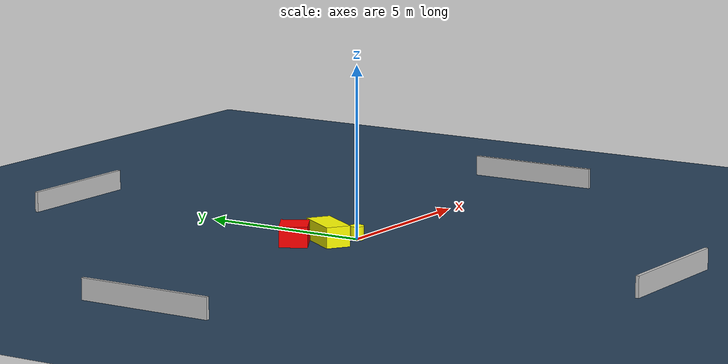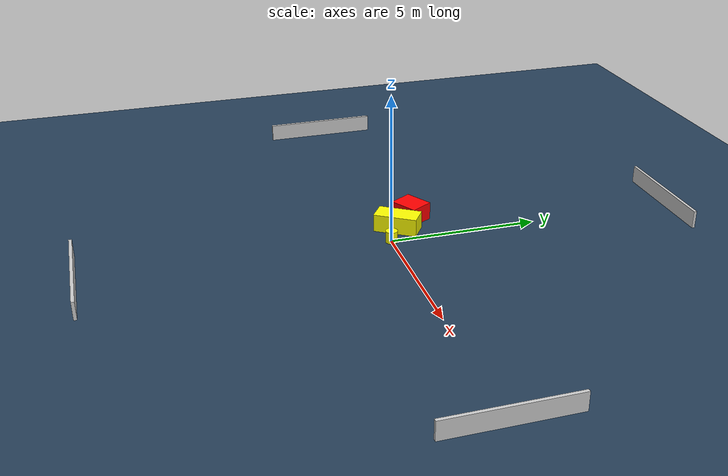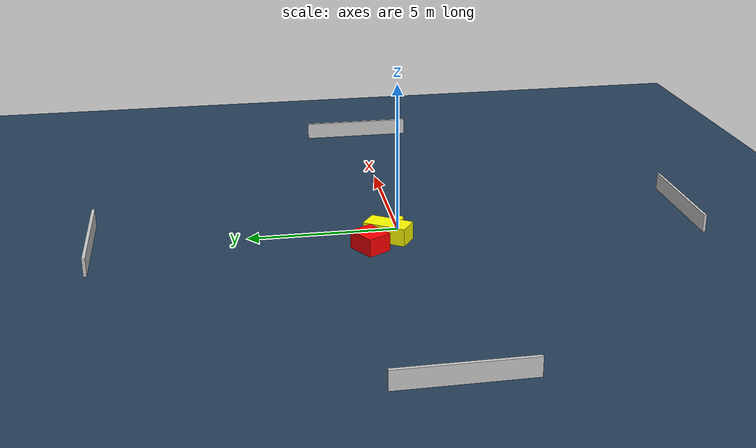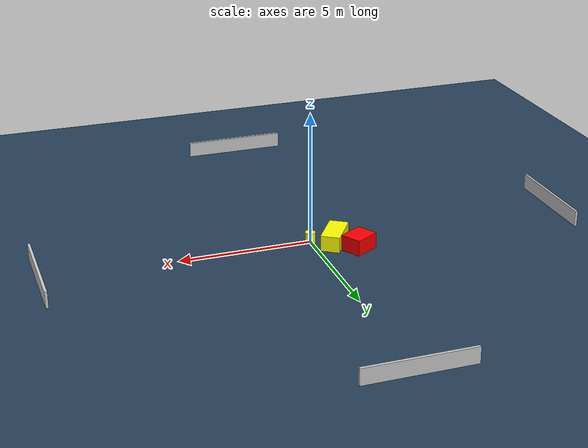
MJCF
<?xml version="1.0" ?>
<mujoco model="generated_environment">
  <option timestep="0.01" integrator="RK4" cone="elliptic"/>
  <default>
    <geom density="1"/>
  </default>
  <asset>
    <texture builtin="gradient" height="3072" name="skybox" rgb1="0.3 0.5 0.7" rgb2="0 0 0" type="skybox" width="512"/>
    <texture builtin="checker" height="300" name="groundplane" rgb1="0.2 0.3 0.4" rgb2="0.1 0.2 0.3" type="2d" width="300"/>
    <material name="groundplane" reflectance="0.2" texrepeat="5 5" texture="groundplane"/>
  </asset>
  <worldbody>
    <light dir="0 0 -1" directional="true" pos="0 0 1.5"/>
    <geom condim="3" friction="0.5 0.005 0.001" material="groundplane" name="floor" pos="0 0 0" size="0 0 0.05" type="plane"/>
    <body name="walls">
      <geom name="wall_1" condim="4" pos="-10.0 0.0 0.3" rgba="0.800000011920929 0.800000011920929 0.800000011920929 1.0" size="0.05 2.0 0.3" type="box"/>
      <geom name="wall_2" condim="4" pos="10.0 0.0 0.3" rgba="0.800000011920929 0.800000011920929 0.800000011920929 1.0" size="0.05 2.0 0.3" type="box"/>
      <geom name="wall_3" condim="4" pos="0.0 -10.0 0.3" rgba="0.800000011920929 0.800000011920929 0.800000011920929 1.0" size="2.0 0.05 0.3" type="box"/>
      <geom name="wall_4" condim="4" pos="0.0 10.0 0.3" rgba="0.800000011920929 0.800000011920929 0.800000011920929 1.0" size="2.0 0.05 0.3" type="box"/>
    </body>
    <body name="robot">
      <joint name="joint_x" type="slide" pos="0 0 0" axis="1 0 0"/>
      <joint name="joint_y" type="slide" pos="0 0 0" axis="0 1 0"/>
      <geom name="robot" type="cylinder" pos="0.0 0.0 0.2" size="0.2 0.2 0.0" mass="5.0" friction="1.0 0.005 0.0001" condim="4" rgba="1.0 1.0 0.0 1.0"/>
    </body>
    <body name="obstacle_1_movable">
      <geom name="obstacle_1_movable" condim="4" pos="-0.7914770052978974 0.45471910504873414 0.3" euler="0 0 146.34921682814576" friction="0.0 0.005 0.001" rgba="1.0 1.0 0.0 1.0" size="0.36035306896193253 0.7331303205283364 0.3" type="box" mass="0.1"/>
      <joint type="free"/>
    </body>
    <body name="obstacle_2_static">
      <geom name="obstacle_2_static" condim="4" pos="-1.4779525643107507 1.14796932557368 0.3" euler="0 0 30.23041261149757" friction="0.0 0.005 0.001" rgba="1.0 0.0 0.0 1.0" size="0.49962459799217535 0.4084903625725375 0.3" type="box"/>
    </body>
  </worldbody>
  <actuator>
    <motor name="actuator_x" joint="joint_x" gear="1" ctrlrange="-1 1"/>
    <motor name="actuator_y" joint="joint_y" gear="1" ctrlrange="-1 1"/>
  </actuator>
</mujoco>
